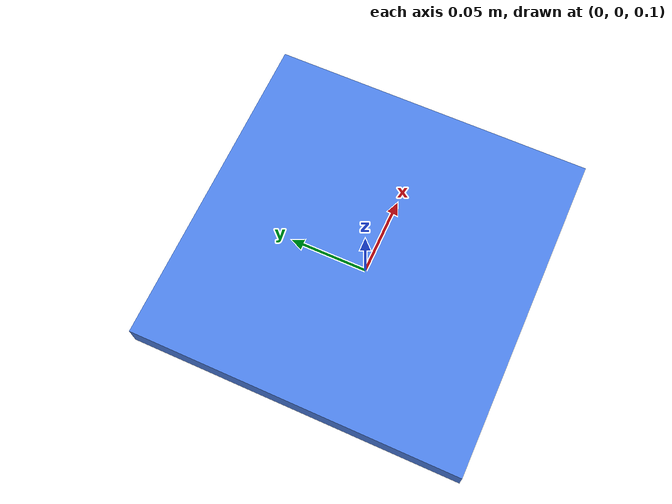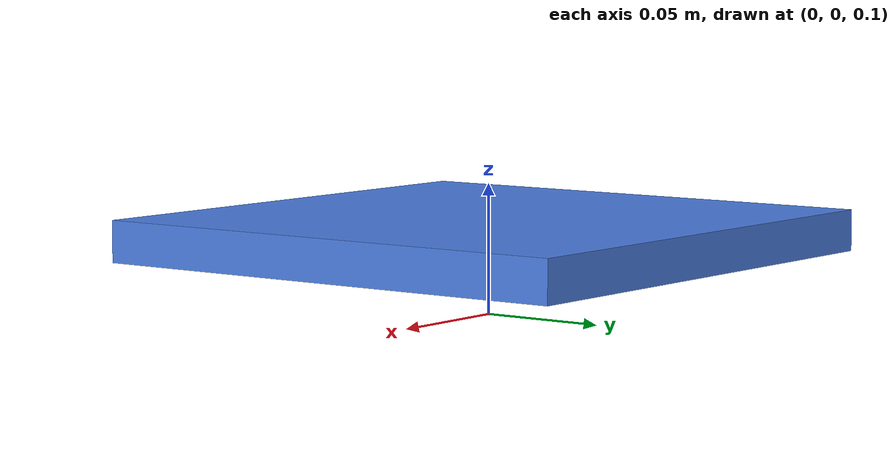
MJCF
<mujoco model="tactile_plate">
  <compiler inertiafromgeom="true" angle="radian"/>
  <option gravity="0 0 -9.81"/>
  <default>
    <geom density="500"/>
  </default>
  <worldbody>
    <body name="plate" pos="0 0 0.13">
      <joint name="slide_x" type="slide" axis="1 0 0" range="-0.25 0.25" damping="3"/>
      <joint name="press_z" type="slide" axis="0 0 1" range="-0.3 0.3" damping="3"/>
      <geom name="plate_geom" type="box" size="0.1 0.1 0.008" friction="1 0.01 0.001" rgba="0.3 0.5 0.9 1"/>
    </body>
  </worldbody>
</mujoco>
